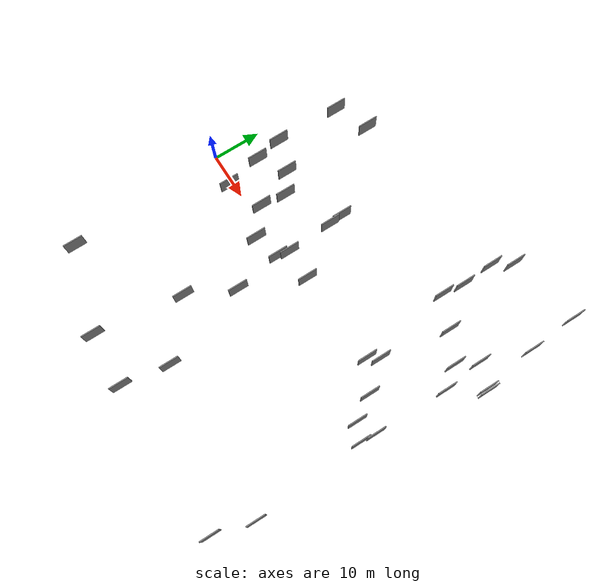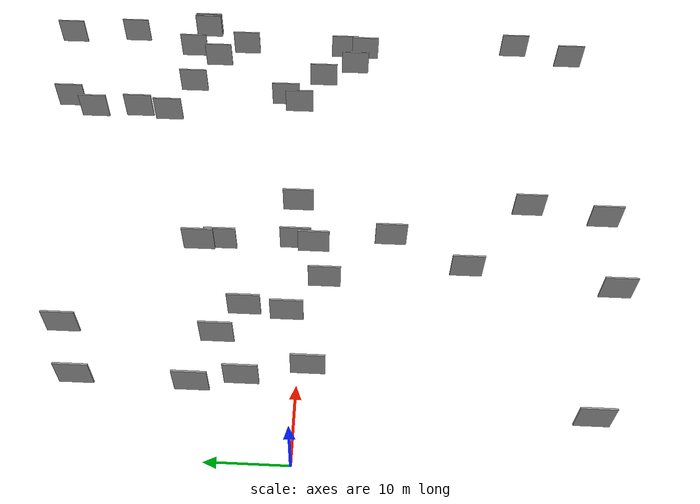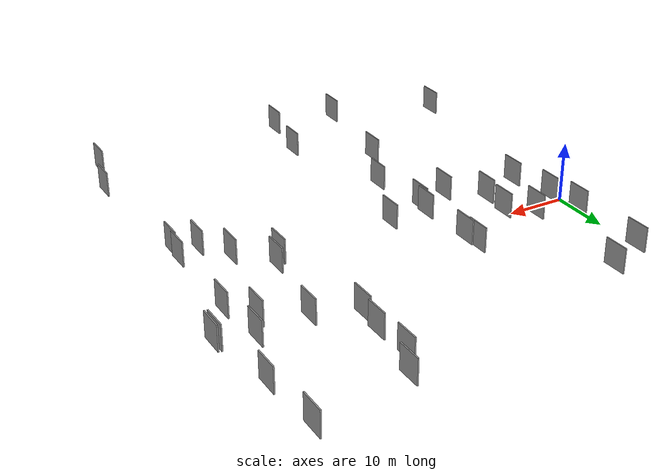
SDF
<sdf version="1.6">
 <world name="default">
  <scene>
   <sky><clouds><speed>12</speed></clouds></sky>
   <ambient>0.4 0.4 0.4 1</ambient>
   <background>0.7 0.7 0.7 1</background>
   <shadows>1</shadows>
  </scene>
  <gravity>0 0 -9.8066</gravity>
  <magnetic_field>6e-06 2.3e-05 -4.2e-05</magnetic_field>
  <physics default="0" name="default_physics" type="ode">
   <ode>
    <solver>
     <type>quick</type>
     <iters>10</iters>
     <sor>1.0</sor>
     <use_dynamic_moi_rescaling>0</use_dynamic_moi_rescaling>
    </solver>
    <constraints>
     <cfm>0</cfm>
     <erp>0.2</erp>
     <contact_max_correcting_vel>100</contact_max_correcting_vel>
     <contact_surface_layer>0.001</contact_surface_layer>
    </constraints>
   </ode>
   <max_step_size>0.004</max_step_size>
   <real_time_factor>1</real_time_factor>
   <real_time_update_rate>250</real_time_update_rate>
  </physics>
  <light name="sun" type="directional">
   <pose>0 0 10 0 0 0</pose>
   <diffuse>0.8 0.8 0.8 1</diffuse>
   <specular>0.2 0.2 0.2 1</specular>
   <attenuation>
    <range>1000</range>
    <constant>0.9</constant>
    <linear>0.01</linear>
    <quadratic>0.001</quadratic>
   </attenuation>
   <direction>-0.5 0.1 -0.9</direction>
  </light>
  <model name="grey_wall_1">
   <static>1</static>
   <pose>64.5799 -38.7247 5.0 0.000000 0.000000 1.570796</pose>
   <link name="link">
    <pose>0 0 2.00 0 0 0</pose>
    <collision name="collision"><geometry><box><size>4.00 0.2 4.00</size></box></geometry></collision>
    <visual name="visual">
     <cast_shadows>0</cast_shadows>
     <geometry><box><size>4.00 0.2 4.00</size></box></geometry>
     <material>
      <script>
       <uri>model://grey_wall/materials/scripts</uri>
       <uri>model://grey_wall/materials/textures</uri>
       <name>vrc/grey_wall</name>
      </script>
     </material>
    </visual>
   </link>
  </model>
  <model name="grey_wall_2">
   <static>1</static>
   <pose>16.8913 6.6205 5.0 0.000000 0.000000 1.570796</pose>
   <link name="link">
    <pose>0 0 2.00 0 0 0</pose>
    <collision name="collision"><geometry><box><size>4.00 0.2 4.00</size></box></geometry></collision>
    <visual name="visual">
     <cast_shadows>0</cast_shadows>
     <geometry><box><size>4.00 0.2 4.00</size></box></geometry>
     <material>
      <script>
       <uri>model://grey_wall/materials/scripts</uri>
       <uri>model://grey_wall/materials/textures</uri>
       <name>vrc/grey_wall</name>
      </script>
     </material>
    </visual>
   </link>
  </model>
  <model name="grey_wall_3">
   <static>1</static>
   <pose>52.6621 2.1144 5.0 0.000000 0.000000 1.570796</pose>
   <link name="link">
    <pose>0 0 2.00 0 0 0</pose>
    <collision name="collision"><geometry><box><size>4.00 0.2 4.00</size></box></geometry></collision>
    <visual name="visual">
     <cast_shadows>0</cast_shadows>
     <geometry><box><size>4.00 0.2 4.00</size></box></geometry>
     <material>
      <script>
       <uri>model://grey_wall/materials/scripts</uri>
       <uri>model://grey_wall/materials/textures</uri>
       <name>vrc/grey_wall</name>
      </script>
     </material>
    </visual>
   </link>
  </model>
  <model name="grey_wall_4">
   <static>1</static>
   <pose>67.1704 38.8763 5.0 0.000000 0.000000 1.570796</pose>
   <link name="link">
    <pose>0 0 2.00 0 0 0</pose>
    <collision name="collision"><geometry><box><size>4.00 0.2 4.00</size></box></geometry></collision>
    <visual name="visual">
     <cast_shadows>0</cast_shadows>
     <geometry><box><size>4.00 0.2 4.00</size></box></geometry>
     <material>
      <script>
       <uri>model://grey_wall/materials/scripts</uri>
       <uri>model://grey_wall/materials/textures</uri>
       <name>vrc/grey_wall</name>
      </script>
     </material>
    </visual>
   </link>
  </model>
  <model name="grey_wall_5">
   <static>1</static>
   <pose>56.4935 18.1802 5.0 0.000000 0.000000 1.570796</pose>
   <link name="link">
    <pose>0 0 2.00 0 0 0</pose>
    <collision name="collision"><geometry><box><size>4.00 0.2 4.00</size></box></geometry></collision>
    <visual name="visual">
     <cast_shadows>0</cast_shadows>
     <geometry><box><size>4.00 0.2 4.00</size></box></geometry>
     <material>
      <script>
       <uri>model://grey_wall/materials/scripts</uri>
       <uri>model://grey_wall/materials/textures</uri>
       <name>vrc/grey_wall</name>
      </script>
     </material>
    </visual>
   </link>
  </model>
  <model name="grey_wall_6">
   <static>1</static>
   <pose>13.4779 27.9198 5.0 0.000000 0.000000 1.570796</pose>
   <link name="link">
    <pose>0 0 2.00 0 0 0</pose>
    <collision name="collision"><geometry><box><size>4.00 0.2 4.00</size></box></geometry></collision>
    <visual name="visual">
     <cast_shadows>0</cast_shadows>
     <geometry><box><size>4.00 0.2 4.00</size></box></geometry>
     <material>
      <script>
       <uri>model://grey_wall/materials/scripts</uri>
       <uri>model://grey_wall/materials/textures</uri>
       <name>vrc/grey_wall</name>
      </script>
     </material>
    </visual>
   </link>
  </model>
  <model name="grey_wall_7">
   <static>1</static>
   <pose>6.4539 11.5407 5.0 0.000000 0.000000 1.570796</pose>
   <link name="link">
    <pose>0 0 2.00 0 0 0</pose>
    <collision name="collision"><geometry><box><size>4.00 0.2 4.00</size></box></geometry></collision>
    <visual name="visual">
     <cast_shadows>0</cast_shadows>
     <geometry><box><size>4.00 0.2 4.00</size></box></geometry>
     <material>
      <script>
       <uri>model://grey_wall/materials/scripts</uri>
       <uri>model://grey_wall/materials/textures</uri>
       <name>vrc/grey_wall</name>
      </script>
     </material>
    </visual>
   </link>
  </model>
  <model name="grey_wall_8">
   <static>1</static>
   <pose>32.6061 -38.9345 5.0 0.000000 0.000000 1.570796</pose>
   <link name="link">
    <pose>0 0 2.00 0 0 0</pose>
    <collision name="collision"><geometry><box><size>4.00 0.2 4.00</size></box></geometry></collision>
    <visual name="visual">
     <cast_shadows>0</cast_shadows>
     <geometry><box><size>4.00 0.2 4.00</size></box></geometry>
     <material>
      <script>
       <uri>model://grey_wall/materials/scripts</uri>
       <uri>model://grey_wall/materials/textures</uri>
       <name>vrc/grey_wall</name>
      </script>
     </material>
    </visual>
   </link>
  </model>
  <model name="grey_wall_9">
   <static>1</static>
   <pose>12.9186 9.4352 5.0 0.000000 0.000000 1.570796</pose>
   <link name="link">
    <pose>0 0 2.00 0 0 0</pose>
    <collision name="collision"><geometry><box><size>4.00 0.2 4.00</size></box></geometry></collision>
    <visual name="visual">
     <cast_shadows>0</cast_shadows>
     <geometry><box><size>4.00 0.2 4.00</size></box></geometry>
     <material>
      <script>
       <uri>model://grey_wall/materials/scripts</uri>
       <uri>model://grey_wall/materials/textures</uri>
       <name>vrc/grey_wall</name>
      </script>
     </material>
    </visual>
   </link>
  </model>
  <model name="grey_wall_10">
   <static>1</static>
   <pose>65.5544 11.0873 5.0 0.000000 0.000000 1.570796</pose>
   <link name="link">
    <pose>0 0 2.00 0 0 0</pose>
    <collision name="collision"><geometry><box><size>4.00 0.2 4.00</size></box></geometry></collision>
    <visual name="visual">
     <cast_shadows>0</cast_shadows>
     <geometry><box><size>4.00 0.2 4.00</size></box></geometry>
     <material>
      <script>
       <uri>model://grey_wall/materials/scripts</uri>
       <uri>model://grey_wall/materials/textures</uri>
       <name>vrc/grey_wall</name>
      </script>
     </material>
    </visual>
   </link>
  </model>
  <model name="grey_wall_11">
   <static>1</static>
   <pose>64.6356 19.2631 5.0 0.000000 0.000000 1.570796</pose>
   <link name="link">
    <pose>0 0 2.00 0 0 0</pose>
    <collision name="collision"><geometry><box><size>4.00 0.2 4.00</size></box></geometry></collision>
    <visual name="visual">
     <cast_shadows>0</cast_shadows>
     <geometry><box><size>4.00 0.2 4.00</size></box></geometry>
     <material>
      <script>
       <uri>model://grey_wall/materials/scripts</uri>
       <uri>model://grey_wall/materials/textures</uri>
       <name>vrc/grey_wall</name>
      </script>
     </material>
    </visual>
   </link>
  </model>
  <model name="grey_wall_12">
   <static>1</static>
   <pose>28.3698 -11.0868 5.0 0.000000 0.000000 1.570796</pose>
   <link name="link">
    <pose>0 0 2.00 0 0 0</pose>
    <collision name="collision"><geometry><box><size>4.00 0.2 4.00</size></box></geometry></collision>
    <visual name="visual">
     <cast_shadows>0</cast_shadows>
     <geometry><box><size>4.00 0.2 4.00</size></box></geometry>
     <material>
      <script>
       <uri>model://grey_wall/materials/scripts</uri>
       <uri>model://grey_wall/materials/textures</uri>
       <name>vrc/grey_wall</name>
      </script>
     </material>
    </visual>
   </link>
  </model>
  <model name="grey_wall_13">
   <static>1</static>
   <pose>65.0862 -7.3641 5.0 0.000000 0.000000 1.570796</pose>
   <link name="link">
    <pose>0 0 2.00 0 0 0</pose>
    <collision name="collision"><geometry><box><size>4.00 0.2 4.00</size></box></geometry></collision>
    <visual name="visual">
     <cast_shadows>0</cast_shadows>
     <geometry><box><size>4.00 0.2 4.00</size></box></geometry>
     <material>
      <script>
       <uri>model://grey_wall/materials/scripts</uri>
       <uri>model://grey_wall/materials/textures</uri>
       <name>vrc/grey_wall</name>
      </script>
     </material>
    </visual>
   </link>
  </model>
  <model name="grey_wall_14">
   <static>1</static>
   <pose>4.0782 -32.9591 5.0 0.000000 0.000000 1.570796</pose>
   <link name="link">
    <pose>0 0 2.00 0 0 0</pose>
    <collision name="collision"><geometry><box><size>4.00 0.2 4.00</size></box></geometry></collision>
    <visual name="visual">
     <cast_shadows>0</cast_shadows>
     <geometry><box><size>4.00 0.2 4.00</size></box></geometry>
     <material>
      <script>
       <uri>model://grey_wall/materials/scripts</uri>
       <uri>model://grey_wall/materials/textures</uri>
       <name>vrc/grey_wall</name>
      </script>
     </material>
    </visual>
   </link>
  </model>
  <model name="grey_wall_15">
   <static>1</static>
   <pose>50.2954 31.9529 5.0 0.000000 0.000000 1.570796</pose>
   <link name="link">
    <pose>0 0 2.00 0 0 0</pose>
    <collision name="collision"><geometry><box><size>4.00 0.2 4.00</size></box></geometry></collision>
    <visual name="visual">
     <cast_shadows>0</cast_shadows>
     <geometry><box><size>4.00 0.2 4.00</size></box></geometry>
     <material>
      <script>
       <uri>model://grey_wall/materials/scripts</uri>
       <uri>model://grey_wall/materials/textures</uri>
       <name>vrc/grey_wall</name>
      </script>
     </material>
    </visual>
   </link>
  </model>
  <model name="grey_wall_16">
   <static>1</static>
   <pose>58.6051 -1.1972 5.0 0.000000 0.000000 1.570796</pose>
   <link name="link">
    <pose>0 0 2.00 0 0 0</pose>
    <collision name="collision"><geometry><box><size>4.00 0.2 4.00</size></box></geometry></collision>
    <visual name="visual">
     <cast_shadows>0</cast_shadows>
     <geometry><box><size>4.00 0.2 4.00</size></box></geometry>
     <material>
      <script>
       <uri>model://grey_wall/materials/scripts</uri>
       <uri>model://grey_wall/materials/textures</uri>
       <name>vrc/grey_wall</name>
      </script>
     </material>
    </visual>
   </link>
  </model>
  <model name="grey_wall_17">
   <static>1</static>
   <pose>21.4174 -2.8317 5.0 0.000000 0.000000 1.570796</pose>
   <link name="link">
    <pose>0 0 2.00 0 0 0</pose>
    <collision name="collision"><geometry><box><size>4.00 0.2 4.00</size></box></geometry></collision>
    <visual name="visual">
     <cast_shadows>0</cast_shadows>
     <geometry><box><size>4.00 0.2 4.00</size></box></geometry>
     <material>
      <script>
       <uri>model://grey_wall/materials/scripts</uri>
       <uri>model://grey_wall/materials/textures</uri>
       <name>vrc/grey_wall</name>
      </script>
     </material>
    </visual>
   </link>
  </model>
  <model name="grey_wall_18">
   <static>1</static>
   <pose>50.1022 21.0409 5.0 0.000000 0.000000 1.570796</pose>
   <link name="link">
    <pose>0 0 2.00 0 0 0</pose>
    <collision name="collision"><geometry><box><size>4.00 0.2 4.00</size></box></geometry></collision>
    <visual name="visual">
     <cast_shadows>0</cast_shadows>
     <geometry><box><size>4.00 0.2 4.00</size></box></geometry>
     <material>
      <script>
       <uri>model://grey_wall/materials/scripts</uri>
       <uri>model://grey_wall/materials/textures</uri>
       <name>vrc/grey_wall</name>
      </script>
     </material>
    </visual>
   </link>
  </model>
  <model name="grey_wall_19">
   <static>1</static>
   <pose>69.4346 17.5841 5.0 0.000000 0.000000 1.570796</pose>
   <link name="link">
    <pose>0 0 2.00 0 0 0</pose>
    <collision name="collision"><geometry><box><size>4.00 0.2 4.00</size></box></geometry></collision>
    <visual name="visual">
     <cast_shadows>0</cast_shadows>
     <geometry><box><size>4.00 0.2 4.00</size></box></geometry>
     <material>
      <script>
       <uri>model://grey_wall/materials/scripts</uri>
       <uri>model://grey_wall/materials/textures</uri>
       <name>vrc/grey_wall</name>
      </script>
     </material>
    </visual>
   </link>
  </model>
  <model name="grey_wall_20">
   <static>1</static>
   <pose>33.6173 1.1093 5.0 0.000000 0.000000 1.570796</pose>
   <link name="link">
    <pose>0 0 2.00 0 0 0</pose>
    <collision name="collision"><geometry><box><size>4.00 0.2 4.00</size></box></geometry></collision>
    <visual name="visual">
     <cast_shadows>0</cast_shadows>
     <geometry><box><size>4.00 0.2 4.00</size></box></geometry>
     <material>
      <script>
       <uri>model://grey_wall/materials/scripts</uri>
       <uri>model://grey_wall/materials/textures</uri>
       <name>vrc/grey_wall</name>
      </script>
     </material>
    </visual>
   </link>
  </model>
  <model name="grey_wall_21">
   <static>1</static>
   <pose>26.7992 -1.2339 5.0 0.000000 0.000000 1.570796</pose>
   <link name="link">
    <pose>0 0 2.00 0 0 0</pose>
    <collision name="collision"><geometry><box><size>4.00 0.2 4.00</size></box></geometry></collision>
    <visual name="visual">
     <cast_shadows>0</cast_shadows>
     <geometry><box><size>4.00 0.2 4.00</size></box></geometry>
     <material>
      <script>
       <uri>model://grey_wall/materials/scripts</uri>
       <uri>model://grey_wall/materials/textures</uri>
       <name>vrc/grey_wall</name>
      </script>
     </material>
    </visual>
   </link>
  </model>
  <model name="grey_wall_22">
   <static>1</static>
   <pose>50.6519 25.4522 5.0 0.000000 0.000000 1.570796</pose>
   <link name="link">
    <pose>0 0 2.00 0 0 0</pose>
    <collision name="collision"><geometry><box><size>4.00 0.2 4.00</size></box></geometry></collision>
    <visual name="visual">
     <cast_shadows>0</cast_shadows>
     <geometry><box><size>4.00 0.2 4.00</size></box></geometry>
     <material>
      <script>
       <uri>model://grey_wall/materials/scripts</uri>
       <uri>model://grey_wall/materials/textures</uri>
       <name>vrc/grey_wall</name>
      </script>
     </material>
    </visual>
   </link>
  </model>
  <model name="grey_wall_23">
   <static>1</static>
   <pose>52.4099 35.8447 5.0 0.000000 0.000000 1.570796</pose>
   <link name="link">
    <pose>0 0 2.00 0 0 0</pose>
    <collision name="collision"><geometry><box><size>4.00 0.2 4.00</size></box></geometry></collision>
    <visual name="visual">
     <cast_shadows>0</cast_shadows>
     <geometry><box><size>4.00 0.2 4.00</size></box></geometry>
     <material>
      <script>
       <uri>model://grey_wall/materials/scripts</uri>
       <uri>model://grey_wall/materials/textures</uri>
       <name>vrc/grey_wall</name>
      </script>
     </material>
    </visual>
   </link>
  </model>
  <model name="grey_wall_24">
   <static>1</static>
   <pose>26.5206 13.4300 5.0 0.000000 0.000000 1.570796</pose>
   <link name="link">
    <pose>0 0 2.00 0 0 0</pose>
    <collision name="collision"><geometry><box><size>4.00 0.2 4.00</size></box></geometry></collision>
    <visual name="visual">
     <cast_shadows>0</cast_shadows>
     <geometry><box><size>4.00 0.2 4.00</size></box></geometry>
     <material>
      <script>
       <uri>model://grey_wall/materials/scripts</uri>
       <uri>model://grey_wall/materials/textures</uri>
       <name>vrc/grey_wall</name>
      </script>
     </material>
    </visual>
   </link>
  </model>
  <model name="grey_wall_25">
   <static>1</static>
   <pose>62.5072 15.1461 5.0 0.000000 0.000000 1.570796</pose>
   <link name="link">
    <pose>0 0 2.00 0 0 0</pose>
    <collision name="collision"><geometry><box><size>4.00 0.2 4.00</size></box></geometry></collision>
    <visual name="visual">
     <cast_shadows>0</cast_shadows>
     <geometry><box><size>4.00 0.2 4.00</size></box></geometry>
     <material>
      <script>
       <uri>model://grey_wall/materials/scripts</uri>
       <uri>model://grey_wall/materials/textures</uri>
       <name>vrc/grey_wall</name>
      </script>
     </material>
    </visual>
   </link>
  </model>
  <model name="grey_wall_26">
   <static>1</static>
   <pose>54.1058 4.1856 5.0 0.000000 0.000000 1.570796</pose>
   <link name="link">
    <pose>0 0 2.00 0 0 0</pose>
    <collision name="collision"><geometry><box><size>4.00 0.2 4.00</size></box></geometry></collision>
    <visual name="visual">
     <cast_shadows>0</cast_shadows>
     <geometry><box><size>4.00 0.2 4.00</size></box></geometry>
     <material>
      <script>
       <uri>model://grey_wall/materials/scripts</uri>
       <uri>model://grey_wall/materials/textures</uri>
       <name>vrc/grey_wall</name>
      </script>
     </material>
    </visual>
   </link>
  </model>
  <model name="grey_wall_27">
   <static>1</static>
   <pose>7.5233 5.9950 5.0 0.000000 0.000000 1.570796</pose>
   <link name="link">
    <pose>0 0 2.00 0 0 0</pose>
    <collision name="collision"><geometry><box><size>4.00 0.2 4.00</size></box></geometry></collision>
    <visual name="visual">
     <cast_shadows>0</cast_shadows>
     <geometry><box><size>4.00 0.2 4.00</size></box></geometry>
     <material>
      <script>
       <uri>model://grey_wall/materials/scripts</uri>
       <uri>model://grey_wall/materials/textures</uri>
       <name>vrc/grey_wall</name>
      </script>
     </material>
    </visual>
   </link>
  </model>
  <model name="grey_wall_28">
   <static>1</static>
   <pose>16.3592 1.4555 5.0 0.000000 0.000000 1.570796</pose>
   <link name="link">
    <pose>0 0 2.00 0 0 0</pose>
    <collision name="collision"><geometry><box><size>4.00 0.2 4.00</size></box></geometry></collision>
    <visual name="visual">
     <cast_shadows>0</cast_shadows>
     <geometry><box><size>4.00 0.2 4.00</size></box></geometry>
     <material>
      <script>
       <uri>model://grey_wall/materials/scripts</uri>
       <uri>model://grey_wall/materials/textures</uri>
       <name>vrc/grey_wall</name>
      </script>
     </material>
    </visual>
   </link>
  </model>
  <model name="grey_wall_29">
   <static>1</static>
   <pose>66.7471 -30.5385 5.0 0.000000 0.000000 1.570796</pose>
   <link name="link">
    <pose>0 0 2.00 0 0 0</pose>
    <collision name="collision"><geometry><box><size>4.00 0.2 4.00</size></box></geometry></collision>
    <visual name="visual">
     <cast_shadows>0</cast_shadows>
     <geometry><box><size>4.00 0.2 4.00</size></box></geometry>
     <material>
      <script>
       <uri>model://grey_wall/materials/scripts</uri>
       <uri>model://grey_wall/materials/textures</uri>
       <name>vrc/grey_wall</name>
      </script>
     </material>
    </visual>
   </link>
  </model>
  <model name="grey_wall_30">
   <static>1</static>
   <pose>67.8969 28.8501 5.0 0.000000 0.000000 1.570796</pose>
   <link name="link">
    <pose>0 0 2.00 0 0 0</pose>
    <collision name="collision"><geometry><box><size>4.00 0.2 4.00</size></box></geometry></collision>
    <visual name="visual">
     <cast_shadows>0</cast_shadows>
     <geometry><box><size>4.00 0.2 4.00</size></box></geometry>
     <material>
      <script>
       <uri>model://grey_wall/materials/scripts</uri>
       <uri>model://grey_wall/materials/textures</uri>
       <name>vrc/grey_wall</name>
      </script>
     </material>
    </visual>
   </link>
  </model>
  <model name="grey_wall_31">
   <static>1</static>
   <pose>6.7768 24.8142 5.0 0.000000 0.000000 1.570796</pose>
   <link name="link">
    <pose>0 0 2.00 0 0 0</pose>
    <collision name="collision"><geometry><box><size>4.00 0.2 4.00</size></box></geometry></collision>
    <visual name="visual">
     <cast_shadows>0</cast_shadows>
     <geometry><box><size>4.00 0.2 4.00</size></box></geometry>
     <material>
      <script>
       <uri>model://grey_wall/materials/scripts</uri>
       <uri>model://grey_wall/materials/textures</uri>
       <name>vrc/grey_wall</name>
      </script>
     </material>
    </visual>
   </link>
  </model>
  <model name="grey_wall_32">
   <static>1</static>
   <pose>21.3775 -38.5453 5.0 0.000000 0.000000 1.570796</pose>
   <link name="link">
    <pose>0 0 2.00 0 0 0</pose>
    <collision name="collision"><geometry><box><size>4.00 0.2 4.00</size></box></geometry></collision>
    <visual name="visual">
     <cast_shadows>0</cast_shadows>
     <geometry><box><size>4.00 0.2 4.00</size></box></geometry>
     <material>
      <script>
       <uri>model://grey_wall/materials/scripts</uri>
       <uri>model://grey_wall/materials/textures</uri>
       <name>vrc/grey_wall</name>
      </script>
     </material>
    </visual>
   </link>
  </model>
  <model name="grey_wall_33">
   <static>1</static>
   <pose>26.7471 10.6051 5.0 0.000000 0.000000 1.570796</pose>
   <link name="link">
    <pose>0 0 2.00 0 0 0</pose>
    <collision name="collision"><geometry><box><size>4.00 0.2 4.00</size></box></geometry></collision>
    <visual name="visual">
     <cast_shadows>0</cast_shadows>
     <geometry><box><size>4.00 0.2 4.00</size></box></geometry>
     <material>
      <script>
       <uri>model://grey_wall/materials/scripts</uri>
       <uri>model://grey_wall/materials/textures</uri>
       <name>vrc/grey_wall</name>
      </script>
     </material>
    </visual>
   </link>
  </model>
  <model name="grey_wall_34">
   <static>1</static>
   <pose>27.2508 1.0609 5.0 0.000000 0.000000 1.570796</pose>
   <link name="link">
    <pose>0 0 2.00 0 0 0</pose>
    <collision name="collision"><geometry><box><size>4.00 0.2 4.00</size></box></geometry></collision>
    <visual name="visual">
     <cast_shadows>0</cast_shadows>
     <geometry><box><size>4.00 0.2 4.00</size></box></geometry>
     <material>
      <script>
       <uri>model://grey_wall/materials/scripts</uri>
       <uri>model://grey_wall/materials/textures</uri>
       <name>vrc/grey_wall</name>
      </script>
     </material>
    </visual>
   </link>
  </model>
  <model name="grey_wall_35">
   <static>1</static>
   <pose>69.9105 17.4865 5.0 0.000000 0.000000 1.570796</pose>
   <link name="link">
    <pose>0 0 2.00 0 0 0</pose>
    <collision name="collision"><geometry><box><size>4.00 0.2 4.00</size></box></geometry></collision>
    <visual name="visual">
     <cast_shadows>0</cast_shadows>
     <geometry><box><size>4.00 0.2 4.00</size></box></geometry>
     <material>
      <script>
       <uri>model://grey_wall/materials/scripts</uri>
       <uri>model://grey_wall/materials/textures</uri>
       <name>vrc/grey_wall</name>
      </script>
     </material>
    </visual>
   </link>
  </model>
  <model name="grey_wall_36">
   <static>1</static>
   <pose>61.6179 -5.8778 5.0 0.000000 0.000000 1.570796</pose>
   <link name="link">
    <pose>0 0 2.00 0 0 0</pose>
    <collision name="collision"><geometry><box><size>4.00 0.2 4.00</size></box></geometry></collision>
    <visual name="visual">
     <cast_shadows>0</cast_shadows>
     <geometry><box><size>4.00 0.2 4.00</size></box></geometry>
     <material>
      <script>
       <uri>model://grey_wall/materials/scripts</uri>
       <uri>model://grey_wall/materials/textures</uri>
       <name>vrc/grey_wall</name>
      </script>
     </material>
    </visual>
   </link>
  </model>
  <model name="grey_wall_37">
   <static>1</static>
   <pose>34.1276 -29.2702 5.0 0.000000 0.000000 1.570796</pose>
   <link name="link">
    <pose>0 0 2.00 0 0 0</pose>
    <collision name="collision"><geometry><box><size>4.00 0.2 4.00</size></box></geometry></collision>
    <visual name="visual">
     <cast_shadows>0</cast_shadows>
     <geometry><box><size>4.00 0.2 4.00</size></box></geometry>
     <material>
      <script>
       <uri>model://grey_wall/materials/scripts</uri>
       <uri>model://grey_wall/materials/textures</uri>
       <name>vrc/grey_wall</name>
      </script>
     </material>
    </visual>
   </link>
  </model>
  <model name="grey_wall_38">
   <static>1</static>
   <pose>9.1471 -1.4597 5.0 0.000000 0.000000 1.570796</pose>
   <link name="link">
    <pose>0 0 2.00 0 0 0</pose>
    <collision name="collision"><geometry><box><size>4.00 0.2 4.00</size></box></geometry></collision>
    <visual name="visual">
     <cast_shadows>0</cast_shadows>
     <geometry><box><size>4.00 0.2 4.00</size></box></geometry>
     <material>
      <script>
       <uri>model://grey_wall/materials/scripts</uri>
       <uri>model://grey_wall/materials/textures</uri>
       <name>vrc/grey_wall</name>
      </script>
     </material>
    </visual>
   </link>
  </model>
  <model name="grey_wall_39">
   <static>1</static>
   <pose>65.3295 -4.2313 5.0 0.000000 0.000000 1.570796</pose>
   <link name="link">
    <pose>0 0 2.00 0 0 0</pose>
    <collision name="collision"><geometry><box><size>4.00 0.2 4.00</size></box></geometry></collision>
    <visual name="visual">
     <cast_shadows>0</cast_shadows>
     <geometry><box><size>4.00 0.2 4.00</size></box></geometry>
     <material>
      <script>
       <uri>model://grey_wall/materials/scripts</uri>
       <uri>model://grey_wall/materials/textures</uri>
       <name>vrc/grey_wall</name>
      </script>
     </material>
    </visual>
   </link>
  </model>
  <model name="grey_wall_40">
   <static>1</static>
   <pose>23.8195 -20.4642 5.0 0.000000 0.000000 1.570796</pose>
   <link name="link">
    <pose>0 0 2.00 0 0 0</pose>
    <collision name="collision"><geometry><box><size>4.00 0.2 4.00</size></box></geometry></collision>
    <visual name="visual">
     <cast_shadows>0</cast_shadows>
     <geometry><box><size>4.00 0.2 4.00</size></box></geometry>
     <material>
      <script>
       <uri>model://grey_wall/materials/scripts</uri>
       <uri>model://grey_wall/materials/textures</uri>
       <name>vrc/grey_wall</name>
      </script>
     </material>
    </visual>
   </link>
  </model>
 </world>
</sdf>
